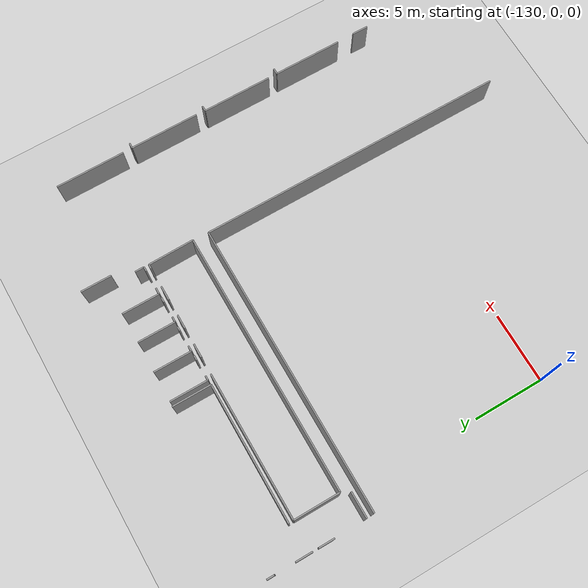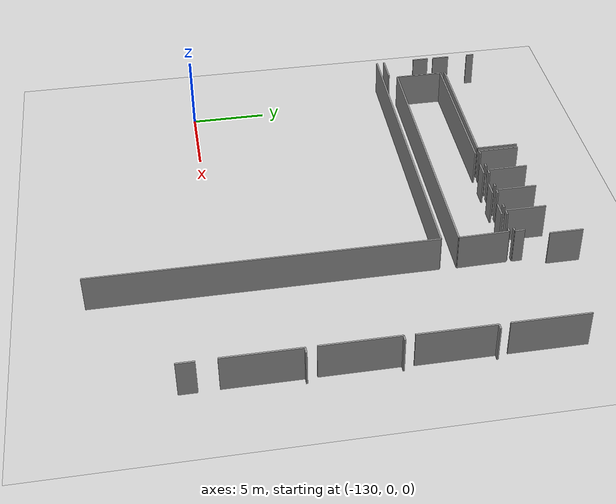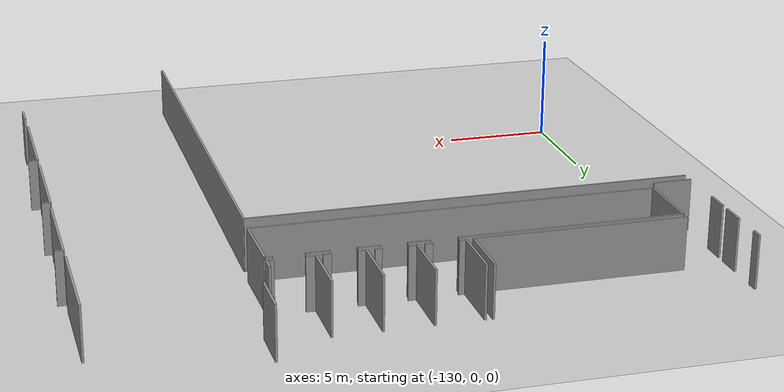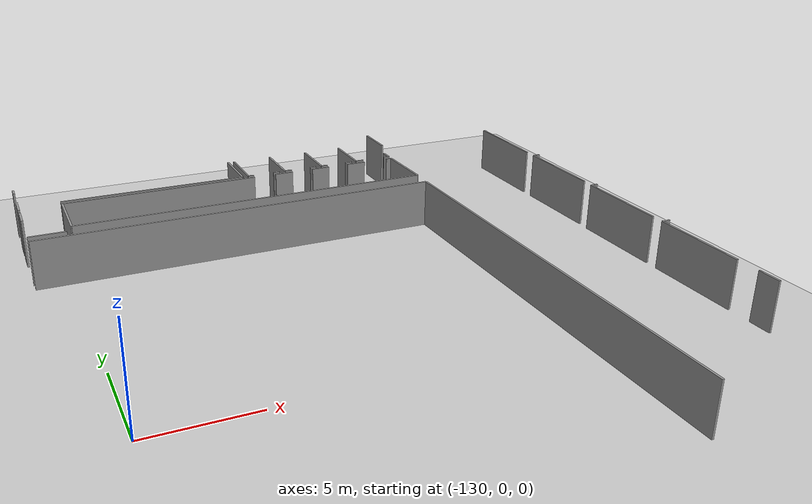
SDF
<sdf version="1.6">
 <world name="default">
  <model name="ground_plane">
   <static>1</static>
   <link name="link">
    <collision name="collision">
     <geometry><plane><normal>0 0 1</normal><size>100 100</size></plane></geometry>
     <surface><friction><ode><mu>100</mu><mu2>50</mu2></ode></friction></surface>
    </collision>
    <visual name="visual">
     <cast_shadows>0</cast_shadows>
     <geometry><plane><normal>0 0 1</normal><size>100 100</size></plane></geometry>
     <material>
      <script><uri>file://media/materials/scripts/gazebo.material</uri><name>Gazebo/Grey</name></script>
     </material>
    </visual>
   </link>
  </model>
  <model name="50015848">
   <static>1</static>
   <link name="Wall_7">
    <collision name="Wall_7_Collision">
     <geometry><box><size>2.75269744813 0.1 2.5</size></box></geometry>
     <pose>1.37634872406 0 1.25 0 0 0</pose>
    </collision>
    <visual name="Wall_7_Visual">
     <pose>1.37634872406 0 1.25 0 0 0</pose>
     <geometry><box><size>2.75269744813 0.1 2.5</size></box></geometry>
     <material>
      <script><uri>file://media/materials/scripts/gazebo.material</uri><name>Gazebo/Grey</name></script>
      <ambient>1 1 1 1</ambient>
     </material>
    </visual>
    <pose>11.7884667838 -25.1315263655 0 0 0 1.57079632679</pose>
   </link>
   <link name="Wall_11">
    <collision name="Wall_11_Collision">
     <geometry><box><size>9.70087594285 0.1 2.5</size></box></geometry>
     <pose>4.85043797142 0 1.25 0 0 0</pose>
    </collision>
    <visual name="Wall_11_Visual">
     <pose>4.85043797142 0 1.25 0 0 0</pose>
     <geometry><box><size>9.70087594285 0.1 2.5</size></box></geometry>
     <material>
      <script><uri>file://media/materials/scripts/gazebo.material</uri><name>Gazebo/Grey</name></script>
      <ambient>1 1 1 1</ambient>
     </material>
    </visual>
    <pose>2.08767578608 -25.0909298505 0 0 0 -0.00418484204685</pose>
   </link>
   <link name="Wall_12">
    <collision name="Wall_12_Collision">
     <geometry><box><size>1.82075369967 0.1 2.5</size></box></geometry>
     <pose>0.910376849837 0 1.25 0 0 0</pose>
    </collision>
    <visual name="Wall_12_Visual">
     <pose>0.910376849837 0 1.25 0 0 0</pose>
     <geometry><box><size>1.82075369967 0.1 2.5</size></box></geometry>
     <material>
      <script><uri>file://media/materials/scripts/gazebo.material</uri><name>Gazebo/Grey</name></script>
      <ambient>1 1 1 1</ambient>
     </material>
    </visual>
    <pose>1.83166401309 -29.2639978687 0 0 0 3.14159265359</pose>
   </link>
   <link name="Wall_13">
    <collision name="Wall_13_Collision">
     <geometry><box><size>1.1100609582 0.1 2.5</size></box></geometry>
     <pose>0.555030479102 0 1.25 0 0 0</pose>
    </collision>
    <visual name="Wall_13_Visual">
     <pose>0.555030479102 0 1.25 0 0 0</pose>
     <geometry><box><size>1.1100609582 0.1 2.5</size></box></geometry>
     <material>
      <script><uri>file://media/materials/scripts/gazebo.material</uri><name>Gazebo/Grey</name></script>
      <ambient>1 1 1 1</ambient>
     </material>
    </visual>
    <pose>0.0109103134178 -27.0291597156 0 0 0 1.57079632679</pose>
   </link>
   <link name="Wall_14">
    <collision name="Wall_14_Collision">
     <geometry><box><size>1.18592569569 0.1 2.5</size></box></geometry>
     <pose>0.592962847846 0 1.25 0 0 0</pose>
    </collision>
    <visual name="Wall_14_Visual">
     <pose>0.592962847846 0 1.25 0 0 0</pose>
     <geometry><box><size>1.18592569569 0.1 2.5</size></box></geometry>
     <material>
      <script><uri>file://media/materials/scripts/gazebo.material</uri><name>Gazebo/Grey</name></script>
      <ambient>1 1 1 1</ambient>
     </material>
    </visual>
    <pose>0.0109103134178 -25.5154171609 0 0 0 1.57079632679</pose>
   </link>
   <link name="Wall_15">
    <collision name="Wall_15_Collision">
     <geometry><box><size>0.52978452131 0.1 2.5</size></box></geometry>
     <pose>0.264892260655 0 1.25 0 0 0</pose>
    </collision>
    <visual name="Wall_15_Visual">
     <pose>0.264892260655 0 1.25 0 0 0</pose>
     <geometry><box><size>0.52978452131 0.1 2.5</size></box></geometry>
     <material>
      <script><uri>file://media/materials/scripts/gazebo.material</uri><name>Gazebo/Grey</name></script>
      <ambient>1 1 1 1</ambient>
     </material>
    </visual>
    <pose>0.0109103134178 -22.9040463308 0 0 0 1.57079632679</pose>
   </link>
   <link name="Wall_24">
    <collision name="Wall_24_Collision">
     <geometry><box><size>2.1759732063 0.1 2.5</size></box></geometry>
     <pose>1.08798660315 0 1.25 0 0 0</pose>
    </collision>
    <visual name="Wall_24_Visual">
     <pose>1.08798660315 0 1.25 0 0 0</pose>
     <geometry><box><size>2.1759732063 0.1 2.5</size></box></geometry>
     <material>
      <script><uri>file://media/materials/scripts/gazebo.material</uri><name>Gazebo/Grey</name></script>
      <ambient>1 1 1 1</ambient>
     </material>
    </visual>
    <pose>21.268514231 -22.9872691866 0 0 0 1.57079632679</pose>
   </link>
   <link name="Wall_37">
    <collision name="Wall_37_Collision">
     <geometry><box><size>18.6221289066 0.1 2.5</size></box></geometry>
     <pose>9.31106445331 0 1.25 0 0 0</pose>
    </collision>
    <visual name="Wall_37_Visual">
     <pose>9.31106445331 0 1.25 0 0 0</pose>
     <geometry><box><size>18.6221289066 0.1 2.5</size></box></geometry>
     <material>
      <script><uri>file://media/materials/scripts/gazebo.material</uri><name>Gazebo/Grey</name></script>
      <ambient>1 1 1 1</ambient>
     </material>
    </visual>
    <pose>20.7539534028 -28.6827065189 0 0 0 3.14159265359</pose>
   </link>
   <link name="Wall_38">
    <collision name="Wall_38_Collision">
     <geometry><box><size>3.25558677822 0.1 2.5</size></box></geometry>
     <pose>1.62779338911 0 1.25 0 0 0</pose>
    </collision>
    <visual name="Wall_38_Visual">
     <pose>1.62779338911 0 1.25 0 0 0</pose>
     <geometry><box><size>3.25558677822 0.1 2.5</size></box></geometry>
     <material>
      <script><uri>file://media/materials/scripts/gazebo.material</uri><name>Gazebo/Grey</name></script>
      <ambient>1 1 1 1</ambient>
     </material>
    </visual>
    <pose>2.13182449619 -28.6827065189 0 0 0 1.57079632679</pose>
   </link>
   <link name="Wall_39">
    <collision name="Wall_39_Collision">
     <geometry><box><size>10.2556946127 0.1 2.5</size></box></geometry>
     <pose>5.12784730636 0 1.25 0 0 0</pose>
    </collision>
    <visual name="Wall_39_Visual">
     <pose>5.12784730636 0 1.25 0 0 0</pose>
     <geometry><box><size>10.2556946127 0.1 2.5</size></box></geometry>
     <material>
      <script><uri>file://media/materials/scripts/gazebo.material</uri><name>Gazebo/Grey</name></script>
      <ambient>1 1 1 1</ambient>
     </material>
    </visual>
    <pose>2.13182449619 -25.4271197407 0 0 0 0.0</pose>
   </link>
   <link name="Wall_40">
    <collision name="Wall_40_Collision">
     <geometry><box><size>0.992077336361 0.1 2.5</size></box></geometry>
     <pose>0.496038668181 0 1.25 0 0 0</pose>
    </collision>
    <visual name="Wall_40_Visual">
     <pose>0.496038668181 0 1.25 0 0 0</pose>
     <geometry><box><size>0.992077336361 0.1 2.5</size></box></geometry>
     <material>
      <script><uri>file://media/materials/scripts/gazebo.material</uri><name>Gazebo/Grey</name></script>
      <ambient>1 1 1 1</ambient>
     </material>
    </visual>
    <pose>13.6084592988 -25.4271197407 0 0 0 0.0</pose>
   </link>
   <link name="Wall_41">
    <collision name="Wall_41_Collision">
     <geometry><box><size>0.9872565002 0.1 2.5</size></box></geometry>
     <pose>0.4936282501 0 1.25 0 0 0</pose>
    </collision>
    <visual name="Wall_41_Visual">
     <pose>0.4936282501 0 1.25 0 0 0</pose>
     <geometry><box><size>0.9872565002 0.1 2.5</size></box></geometry>
     <material>
      <script><uri>file://media/materials/scripts/gazebo.material</uri><name>Gazebo/Grey</name></script>
      <ambient>1 1 1 1</ambient>
     </material>
    </visual>
    <pose>15.795850275 -25.4271197407 0 0 0 0.0</pose>
   </link>
   <link name="Wall_42">
    <collision name="Wall_42_Collision">
     <geometry><box><size>1.03952451332 0.1 2.5</size></box></geometry>
     <pose>0.519762256659 0 1.25 0 0 0</pose>
    </collision>
    <visual name="Wall_42_Visual">
     <pose>0.519762256659 0 1.25 0 0 0</pose>
     <geometry><box><size>1.03952451332 0.1 2.5</size></box></geometry>
     <material>
      <script><uri>file://media/materials/scripts/gazebo.material</uri><name>Gazebo/Grey</name></script>
      <ambient>1 1 1 1</ambient>
     </material>
    </visual>
    <pose>17.9487342133 -25.4271197407 0 0 0 0.0</pose>
   </link>
   <link name="Wall_43">
    <collision name="Wall_43_Collision">
     <geometry><box><size>0.32045874062 0.1 2.5</size></box></geometry>
     <pose>0.16022937031 0 1.25 0 0 0</pose>
    </collision>
    <visual name="Wall_43_Visual">
     <pose>0.16022937031 0 1.25 0 0 0</pose>
     <geometry><box><size>0.32045874062 0.1 2.5</size></box></geometry>
     <material>
      <script><uri>file://media/materials/scripts/gazebo.material</uri><name>Gazebo/Grey</name></script>
      <ambient>1 1 1 1</ambient>
     </material>
    </visual>
    <pose>20.3802117362 -25.4271197407 0 0 0 0.0</pose>
   </link>
   <link name="Wall_44">
    <collision name="Wall_44_Collision">
     <geometry><box><size>3.25602277952 0.1 2.5</size></box></geometry>
     <pose>1.62801138976 0 1.25 0 0 0</pose>
    </collision>
    <visual name="Wall_44_Visual">
     <pose>1.62801138976 0 1.25 0 0 0</pose>
     <geometry><box><size>3.25602277952 0.1 2.5</size></box></geometry>
     <material>
      <script><uri>file://media/materials/scripts/gazebo.material</uri><name>Gazebo/Grey</name></script>
      <ambient>1 1 1 1</ambient>
     </material>
    </visual>
    <pose>20.7006704768 -25.4271197407 0 0 0 -1.5544311758</pose>
   </link>
   <link name="Wall_45">
    <collision name="Wall_45_Collision">
     <geometry><box><size>0.343548008551 0.1 2.5</size></box></geometry>
     <pose>0.171774004275 0 1.25 0 0 0</pose>
    </collision>
    <visual name="Wall_45_Visual">
     <pose>0.171774004275 0 1.25 0 0 0</pose>
     <geometry><box><size>0.343548008551 0.1 2.5</size></box></geometry>
     <material>
      <script><uri>file://media/materials/scripts/gazebo.material</uri><name>Gazebo/Grey</name></script>
      <ambient>1 1 1 1</ambient>
     </material>
    </visual>
    <pose>13.9479476559 -25.0883925683 0 0 0 3.14159265359</pose>
   </link>
   <link name="Wall_46">
    <collision name="Wall_46_Collision">
     <geometry><box><size>0.313608078707 0.1 2.5</size></box></geometry>
     <pose>0.156804039353 0 1.25 0 0 0</pose>
    </collision>
    <visual name="Wall_46_Visual">
     <pose>0.156804039353 0 1.25 0 0 0</pose>
     <geometry><box><size>0.313608078707 0.1 2.5</size></box></geometry>
     <material>
      <script><uri>file://media/materials/scripts/gazebo.material</uri><name>Gazebo/Grey</name></script>
      <ambient>1 1 1 1</ambient>
     </material>
    </visual>
    <pose>12.4461303275 -25.0883925683 0 0 0 3.14159265359</pose>
   </link>
   <link name="Wall_47">
    <collision name="Wall_47_Collision">
     <geometry><box><size>2.68647438296 0.1 2.5</size></box></geometry>
     <pose>1.34323719148 0 1.25 0 0 0</pose>
    </collision>
    <visual name="Wall_47_Visual">
     <pose>1.34323719148 0 1.25 0 0 0</pose>
     <geometry><box><size>2.68647438296 0.1 2.5</size></box></geometry>
     <material>
      <script><uri>file://media/materials/scripts/gazebo.material</uri><name>Gazebo/Grey</name></script>
      <ambient>1 1 1 1</ambient>
     </material>
    </visual>
    <pose>12.1325222488 -25.0883925683 0 0 0 1.57079632679</pose>
   </link>
   <link name="Wall_50">
    <collision name="Wall_50_Collision">
     <geometry><box><size>0.307264873231 0.1 2.5</size></box></geometry>
     <pose>0.153632436616 0 1.25 0 0 0</pose>
    </collision>
    <visual name="Wall_50_Visual">
     <pose>0.153632436616 0 1.25 0 0 0</pose>
     <geometry><box><size>0.307264873231 0.1 2.5</size></box></geometry>
     <material>
      <script><uri>file://media/materials/scripts/gazebo.material</uri><name>Gazebo/Grey</name></script>
      <ambient>1 1 1 1</ambient>
     </material>
    </visual>
    <pose>16.1150403745 -25.0736763316 0 0 0 3.14159265359</pose>
   </link>
   <link name="Wall_51">
    <collision name="Wall_51_Collision">
     <geometry><box><size>0.39809957564 0.1 2.5</size></box></geometry>
     <pose>0.19904978782 0 1.25 0 0 0</pose>
    </collision>
    <visual name="Wall_51_Visual">
     <pose>0.19904978782 0 1.25 0 0 0</pose>
     <geometry><box><size>0.39809957564 0.1 2.5</size></box></geometry>
     <material>
      <script><uri>file://media/materials/scripts/gazebo.material</uri><name>Gazebo/Grey</name></script>
      <ambient>1 1 1 1</ambient>
     </material>
    </visual>
    <pose>14.675640188 -25.0736763316 0 0 0 3.14159265359</pose>
   </link>
   <link name="Wall_52">
    <collision name="Wall_52_Collision">
     <geometry><box><size>2.67048950517 0.1 2.5</size></box></geometry>
     <pose>1.33524475258 0 1.25 0 0 0</pose>
    </collision>
    <visual name="Wall_52_Visual">
     <pose>1.33524475258 0 1.25 0 0 0</pose>
     <geometry><box><size>2.67048950517 0.1 2.5</size></box></geometry>
     <material>
      <script><uri>file://media/materials/scripts/gazebo.material</uri><name>Gazebo/Grey</name></script>
      <ambient>1 1 1 1</ambient>
     </material>
    </visual>
    <pose>14.2775406124 -25.0736763316 0 0 0 1.57079632679</pose>
   </link>
   <link name="Wall_55">
    <collision name="Wall_55_Collision">
     <geometry><box><size>0.360547799225 0.1 2.5</size></box></geometry>
     <pose>0.180273899612 0 1.25 0 0 0</pose>
    </collision>
    <visual name="Wall_55_Visual">
     <pose>0.180273899612 0 1.25 0 0 0</pose>
     <geometry><box><size>0.360547799225 0.1 2.5</size></box></geometry>
     <material>
      <script><uri>file://media/materials/scripts/gazebo.material</uri><name>Gazebo/Grey</name></script>
      <ambient>1 1 1 1</ambient>
     </material>
    </visual>
    <pose>18.3298339983 -25.0894074812 0 0 0 3.14159265359</pose>
   </link>
   <link name="Wall_56">
    <collision name="Wall_56_Collision">
     <geometry><box><size>0.371965569081 0.1 2.5</size></box></geometry>
     <pose>0.18598278454 0 1.25 0 0 0</pose>
    </collision>
    <visual name="Wall_56_Visual">
     <pose>0.18598278454 0 1.25 0 0 0</pose>
     <geometry><box><size>0.371965569081 0.1 2.5</size></box></geometry>
     <material>
      <script><uri>file://media/materials/scripts/gazebo.material</uri><name>Gazebo/Grey</name></script>
      <ambient>1 1 1 1</ambient>
     </material>
    </visual>
    <pose>16.8422254502 -25.0894074812 0 0 0 3.14159265359</pose>
   </link>
   <link name="Wall_57">
    <collision name="Wall_57_Collision">
     <geometry><box><size>2.66237020216 0.1 2.5</size></box></geometry>
     <pose>1.33118510108 0 1.25 0 0 0</pose>
    </collision>
    <visual name="Wall_57_Visual">
     <pose>1.33118510108 0 1.25 0 0 0</pose>
     <geometry><box><size>2.66237020216 0.1 2.5</size></box></geometry>
     <material>
      <script><uri>file://media/materials/scripts/gazebo.material</uri><name>Gazebo/Grey</name></script>
      <ambient>1 1 1 1</ambient>
     </material>
    </visual>
    <pose>16.4702598811 -25.0894074812 0 0 0 1.57079632679</pose>
   </link>
   <link name="Wall_60">
    <collision name="Wall_60_Collision">
     <geometry><box><size>0.324518392124 0.1 2.5</size></box></geometry>
     <pose>0.162259196062 0 1.25 0 0 0</pose>
    </collision>
    <visual name="Wall_60_Visual">
     <pose>0.162259196062 0 1.25 0 0 0</pose>
     <geometry><box><size>0.324518392124 0.1 2.5</size></box></geometry>
     <material>
      <script><uri>file://media/materials/scripts/gazebo.material</uri><name>Gazebo/Grey</name></script>
      <ambient>1 1 1 1</ambient>
     </material>
    </visual>
    <pose>20.7176702675 -25.0769747984 0 0 0 3.14159265359</pose>
   </link>
   <link name="Wall_61">
    <collision name="Wall_61_Collision">
     <geometry><box><size>0.447830306567 0.1 2.5</size></box></geometry>
     <pose>0.223915153284 0 1.25 0 0 0</pose>
    </collision>
    <visual name="Wall_61_Visual">
     <pose>0.223915153284 0 1.25 0 0 0</pose>
     <geometry><box><size>0.447830306567 0.1 2.5</size></box></geometry>
     <material>
      <script><uri>file://media/materials/scripts/gazebo.material</uri><name>Gazebo/Grey</name></script>
      <ambient>1 1 1 1</ambient>
     </material>
    </visual>
    <pose>19.0717353107 -25.0769747984 0 0 0 3.14159265359</pose>
   </link>
   <link name="Wall_62">
    <collision name="Wall_62_Collision">
     <geometry><box><size>2.65729563778 0.1 2.5</size></box></geometry>
     <pose>1.32864781889 0 1.25 0 0 0</pose>
    </collision>
    <visual name="Wall_62_Visual">
     <pose>1.32864781889 0 1.25 0 0 0</pose>
     <geometry><box><size>2.65729563778 0.1 2.5</size></box></geometry>
     <material>
      <script><uri>file://media/materials/scripts/gazebo.material</uri><name>Gazebo/Grey</name></script>
      <ambient>1 1 1 1</ambient>
     </material>
    </visual>
    <pose>18.6239050042 -25.0769747984 0 0 0 1.57079632679</pose>
   </link>
   <link name="Wall_65">
    <collision name="Wall_65_Collision">
     <geometry><box><size>0.652346353461 0.1 2.5</size></box></geometry>
     <pose>0.326173176731 0 1.25 0 0 0</pose>
    </collision>
    <visual name="Wall_65_Visual">
     <pose>0.326173176731 0 1.25 0 0 0</pose>
     <geometry><box><size>0.652346353461 0.1 2.5</size></box></geometry>
     <material>
      <script><uri>file://media/materials/scripts/gazebo.material</uri><name>Gazebo/Grey</name></script>
      <ambient>1 1 1 1</ambient>
     </material>
    </visual>
    <pose>20.7138643442 -24.4246395473 0 0 0 -1.56496208727</pose>
   </link>
   <link name="Wall_70">
    <collision name="Wall_70_Collision">
     <geometry><box><size>20.6582978642 0.1 2.5</size></box></geometry>
     <pose>10.3291489321 0 1.25 0 0 0</pose>
    </collision>
    <visual name="Wall_70_Visual">
     <pose>10.3291489321 0 1.25 0 0 0</pose>
     <geometry><box><size>20.6582978642 0.1 2.5</size></box></geometry>
     <material>
      <script><uri>file://media/materials/scripts/gazebo.material</uri><name>Gazebo/Grey</name></script>
      <ambient>1 1 1 1</ambient>
     </material>
    </visual>
    <pose>0.0436412536711 -29.8044389752 0 0 0 0.0</pose>
   </link>
   <link name="Wall_71">
    <collision name="Wall_71_Collision">
     <geometry><box><size>22.0898324759 0.1 2.5</size></box></geometry>
     <pose>11.044916238 0 1.25 0 0 0</pose>
    </collision>
    <visual name="Wall_71_Visual">
     <pose>11.044916238 0 1.25 0 0 0</pose>
     <geometry><box><size>22.0898324759 0.1 2.5</size></box></geometry>
     <material>
      <script><uri>file://media/materials/scripts/gazebo.material</uri><name>Gazebo/Grey</name></script>
      <ambient>1 1 1 1</ambient>
     </material>
    </visual>
    <pose>20.7019391179 -29.8044389752 0 0 0 -1.57079632679</pose>
   </link>
   <link name="Wall_148">
    <collision name="Wall_148_Collision">
     <geometry><box><size>1.15116492969 0.1 2.5</size></box></geometry>
     <pose>0.575582464843 0 1.25 0 0 0</pose>
    </collision>
    <visual name="Wall_148_Visual">
     <pose>0.575582464843 0 1.25 0 0 0</pose>
     <geometry><box><size>1.15116492969 0.1 2.5</size></box></geometry>
     <material>
      <script><uri>file://media/materials/scripts/gazebo.material</uri><name>Gazebo/Grey</name></script>
      <ambient>1 1 1 1</ambient>
     </material>
    </visual>
    <pose>28.6126775305 -46.8027072801 0 0 0 1.57079632679</pose>
   </link>
   <link name="Wall_321">
    <collision name="Wall_321_Collision">
     <geometry><box><size>4.9268945569 0.1 2.5</size></box></geometry>
     <pose>2.46344727845 0 1.25 0 0 0</pose>
    </collision>
    <visual name="Wall_321_Visual">
     <pose>2.46344727845 0 1.25 0 0 0</pose>
     <geometry><box><size>4.9268945569 0.1 2.5</size></box></geometry>
     <material>
      <script><uri>file://media/materials/scripts/gazebo.material</uri><name>Gazebo/Grey</name></script>
      <ambient>1 1 1 1</ambient>
     </material>
    </visual>
    <pose>28.593647914 -27.6038541316 0 0 0 1.57079632679</pose>
   </link>
   <link name="Wall_330">
    <collision name="Wall_330_Collision">
     <geometry><box><size>4.89543225774 0.1 2.5</size></box></geometry>
     <pose>2.44771612887 0 1.25 0 0 0</pose>
    </collision>
    <visual name="Wall_330_Visual">
     <pose>2.44771612887 0 1.25 0 0 0</pose>
     <geometry><box><size>4.89543225774 0.1 2.5</size></box></geometry>
     <material>
      <script><uri>file://media/materials/scripts/gazebo.material</uri><name>Gazebo/Grey</name></script>
      <ambient>1 1 1 1</ambient>
     </material>
    </visual>
    <pose>28.6101402483 -33.1851137654 0 0 0 1.57079632679</pose>
   </link>
   <link name="Wall_331">
    <collision name="Wall_331_Collision">
     <geometry><box><size>0.384144523594 0.1 2.5</size></box></geometry>
     <pose>0.192072261797 0 1.25 0 0 0</pose>
    </collision>
    <visual name="Wall_331_Visual">
     <pose>0.192072261797 0 1.25 0 0 0</pose>
     <geometry><box><size>0.384144523594 0.1 2.5</size></box></geometry>
     <material>
      <script><uri>file://media/materials/scripts/gazebo.material</uri><name>Gazebo/Grey</name></script>
      <ambient>1 1 1 1</ambient>
     </material>
    </visual>
    <pose>28.6101402483 -28.2896815077 0 0 0 0.0</pose>
   </link>
   <link name="Wall_346">
    <collision name="Wall_346_Collision">
     <geometry><box><size>4.91979016676 0.1 2.5</size></box></geometry>
     <pose>2.45989508338 0 1.25 0 0 0</pose>
    </collision>
    <visual name="Wall_346_Visual">
     <pose>2.45989508338 0 1.25 0 0 0</pose>
     <geometry><box><size>4.91979016676 0.1 2.5</size></box></geometry>
     <material>
      <script><uri>file://media/materials/scripts/gazebo.material</uri><name>Gazebo/Grey</name></script>
      <ambient>1 1 1 1</ambient>
     </material>
    </visual>
    <pose>28.5850211546 -44.4123337287 0 0 0 1.57079632679</pose>
   </link>
   <link name="Wall_347">
    <collision name="Wall_347_Collision">
     <geometry><box><size>0.428800690141 0.1 2.5</size></box></geometry>
     <pose>0.21440034507 0 1.25 0 0 0</pose>
    </collision>
    <visual name="Wall_347_Visual">
     <pose>0.21440034507 0 1.25 0 0 0</pose>
     <geometry><box><size>0.428800690141 0.1 2.5</size></box></geometry>
     <material>
      <script><uri>file://media/materials/scripts/gazebo.material</uri><name>Gazebo/Grey</name></script>
      <ambient>1 1 1 1</ambient>
     </material>
    </visual>
    <pose>28.5850211546 -39.492543562 0 0 0 0.0</pose>
   </link>
   <link name="Wall_350">
    <collision name="Wall_350_Collision">
     <geometry><box><size>4.96622243084 0.1 2.5</size></box></geometry>
     <pose>2.48311121542 0 1.25 0 0 0</pose>
    </collision>
    <visual name="Wall_350_Visual">
     <pose>2.48311121542 0 1.25 0 0 0</pose>
     <geometry><box><size>4.96622243084 0.1 2.5</size></box></geometry>
     <material>
      <script><uri>file://media/materials/scripts/gazebo.material</uri><name>Gazebo/Grey</name></script>
      <ambient>1 1 1 1</ambient>
     </material>
    </visual>
    <pose>28.5723347436 -38.8239697049 0 0 0 1.57079632679</pose>
   </link>
   <link name="Wall_351">
    <collision name="Wall_351_Collision">
     <geometry><box><size>0.386428077565 0.1 2.5</size></box></geometry>
     <pose>0.193214038782 0 1.25 0 0 0</pose>
    </collision>
    <visual name="Wall_351_Visual">
     <pose>0.193214038782 0 1.25 0 0 0</pose>
     <geometry><box><size>0.386428077565 0.1 2.5</size></box></geometry>
     <material>
      <script><uri>file://media/materials/scripts/gazebo.material</uri><name>Gazebo/Grey</name></script>
      <ambient>1 1 1 1</ambient>
     </material>
    </visual>
    <pose>28.5723347436 -33.857747274 0 0 0 0.0</pose>
   </link>
   <pose>-131.8 43.7717730528 0 0 0 0</pose>
  </model>
 </world>
</sdf>
